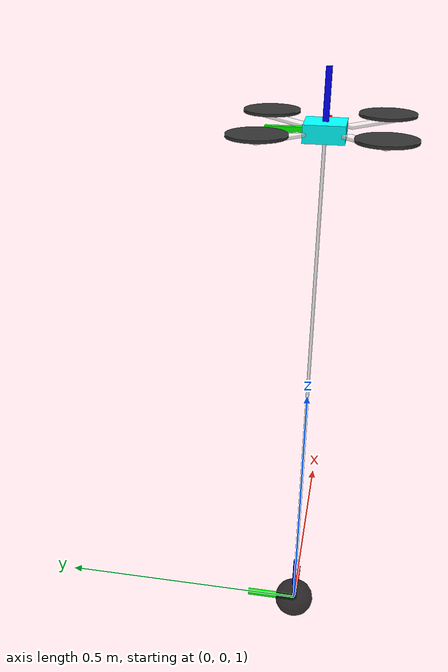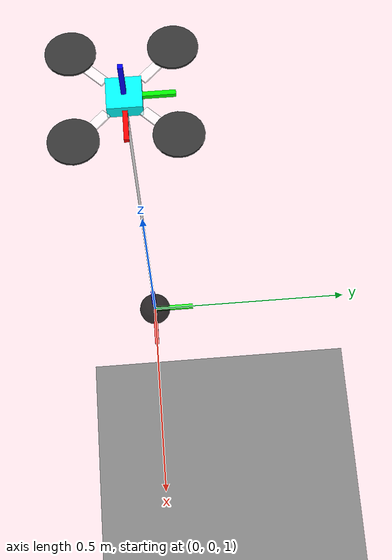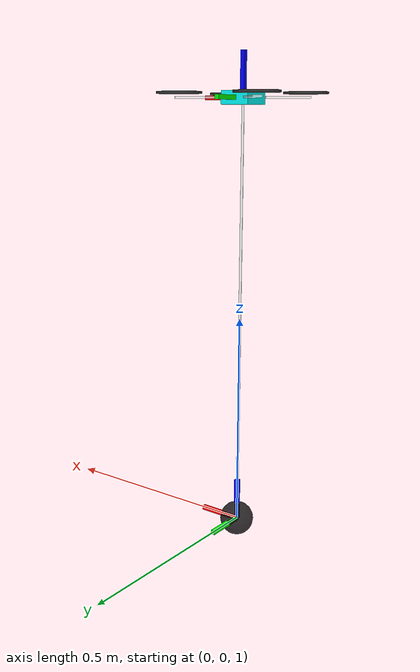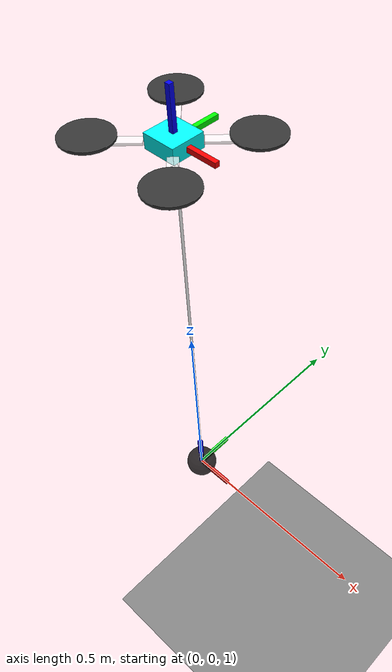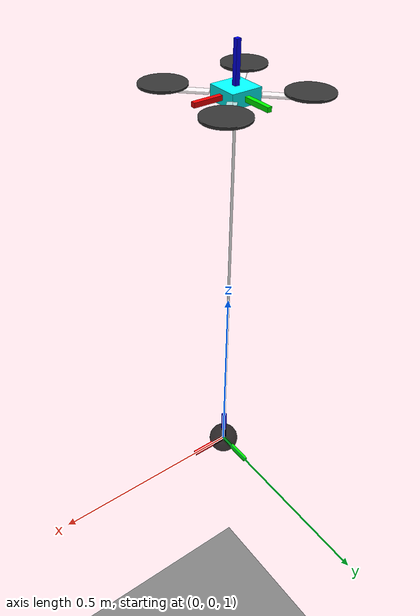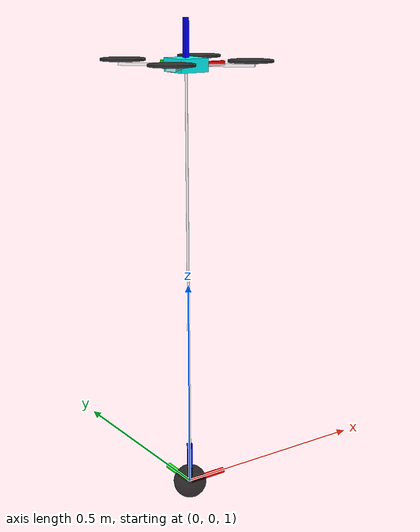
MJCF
<mujoco model="MuJoCo Model">
  <!--Compiler Options-->
  <compiler angle="radian"/>
  <option timestep="0.001" gravity="0 0 -9.81" density="1.225" viscosity="1.8e-05" integrator="RK4" jacobian="sparse">
    <flag energy="enable" contact="enable"/>
  </option>

  <visual>
    <headlight diffuse="0.6 0.6 0.6" ambient="0.3 0.3 0.3" specular="0 0 0"/>
    <rgba haze="0.15 0.25 0.35 1"/>
  </visual>

  <asset>
    <texture type="skybox" builtin="gradient" rgb1="0.3 0.5 0.7" rgb2="0 0 0" width="512" height="3072"/>
    <texture name="floor_texture" type="2d" file="floor3.png"/>
<material name="floor_material" texture="floor_texture" texuniform="true" texrepeat="1 1" reflectance="0.1"/>
  </asset>

  <default>
        <site type="sphere" rgba="1 0 0 1" size="0.005"/>
        <tendon limited="true" width="0.003" rgba="1 1 1 1"/>
        <geom friction=".2"/>
  </default>

  <worldbody>
    <geom type="plane" size="10 10 0.1" />
    <light pos="0 0 10" />

    <camera name="Upper_view" pos="0.0 0.0 6.0" quat="1 0.0 0.0 0.0" mode="trackcom"/>
    <camera name="Track_view" pos="0 -1 .5" quat="0.707 0.70 0.0 0.0" mode="trackcom"/>

    <!-- System Models -->
    <!-- Quadrotor body -->
    <body name="drone" pos="0 0 2" euler="0 0 0">
      <joint name="drone" type="free" damping="0.005" armature="0" pos="0 0 0"/>
      <!--Friction only for the core of the quadrotor-->
      <geom name="core" type="box" pos="0 0 0" quat="1. 0. 0. 0" size="0.035 0.035 0.015" rgba="1 1 1 0.7" mass=".84" friction="1.0 0.005 0.0001"/>
      <geom name="a00" type="box" pos=".071 0.071 0.0" size="0.05 0.01 0.0025" quat=".924 0.0 0.0 0.383" rgba="1 1 1 0.7" mass=".025"/>
      <geom name="a10" type="box" pos=".071 -0.071 0.0" size="0.05 0.01 0.0025" quat=".383 0.0 0.0 0.924" rgba="1 1 1 0.7" mass=".025"/>
      <geom name="a20" type="box" pos="-0.071 -0.071 0.0" size="0.05 0.01 0.0025" quat="-.383 0.0 0.0 0.924" rgba="1 1 1 0.7" mass=".025"/>
      <geom name="a30" type="box" pos="-.071 0.071 0.0" size="0.05 0.01 0.0025" quat=".924 0.0 0.0 -0.383" rgba="1 1 1 0.7" mass=".025"/>

      <!--   Thruster geometries for collisions since site's are excluded from collision checking   -->
      <geom name="thruster0" type="cylinder" pos=" 0.1 0.1 0.01" size="0.05 0.0025" quat="1.0 0.0 0.0 0." rgba="0.2 0.2 0.2 1" mass=".015"/>
      <geom name="thruster1" type="cylinder" pos=" 0.1 -0.1 0.01" size="0.05 0.0025" quat="1.0 0.0 0.0 0." rgba="0.2 0.2 0.2 1" mass=".015"/>
      <geom name="thruster2" type="cylinder" pos="-0.1 -0.1 0.01" size="0.05 0.0025" quat="1.0 0.0 0.0 0." rgba="0.2 0.2 0.2 1" mass=".015"/>
      <geom name="thruster3" type="cylinder" pos="-0.1 0.1 0.01" size="0.05 0.0025" quat="1.0 0.0 0.0 0." rgba="0.2 0.2 0.2 1" mass=".015"/>

      <!--  Representation of the body frame   -->
      <site name="qcX" type="box" pos="0.05 0.0 0.0" size="0.05 0.005 0.005" quat=" 1.0 0.0 0.0 0." rgba="1 0 0 1"/>
      <site name="qcY" type="box" pos="0.0 0.05 0.0" size="0.05 0.005 0.005" quat=" 0.707 0.0 0.0 0.707" rgba="0 1 0 1"/>
      <site name="qcZ" type="box" pos="0.0 0.0 0.05" size="0.05 0.005 0.005" quat="-0.707 0.0 0.707 0." rgba="0 0 1 1"/>

      <!--   Actuator sites to attach actuators, make it invisible   -->
      <site name="thrust" type="box" pos="0 0 0" size="0.035 0.035 0.015" quat="1.0 0.0 0.0 0." rgba="0 1 1 1"/>
      <site name="rateX" type="box" pos="0 0 0" quat="1. 0. 0. 0." size="0.035 0.035 0.015" rgba="0 1 1 1"/>
      <site name="rateY" type="box" pos="0 0 0" quat="1. 0. 0. 0." size="0.035 0.035 0.015" rgba="0 1 1 1"/>
      <site name="rateZ" type="box" pos="0 0 0" quat="1. 0. 0. 0." size="0.035 0.035 0.015" rgba="0 1 1 1"/>
      <site name="imu" pos="0 0 0"/>

      <site name="payload_point_drone" pos="0.0 0.0 -0.00"/>

      <!-- Add bottom-facing camera here -->
    </body>

    <!-- Payloy only in xyz axis -->
    <body name="payload_ball" pos="0 0 1">
      <joint name="payload_ball" pos="0 0 0" type="free" damping="0.01"/>
      <geom name="payload_ball" size="0.04" type="sphere" rgba="0 0 0 0.8" mass="0.15" friction="1.0 0.005 0.0001"/>
      <site name="payload_point" pos="0.0 0.0 0.04"/>
      <!--  Representation of the body frame   -->
      <site name="load_X" type="box" pos="0.05 0.0 0.0" size="0.05 0.005 0.005" quat=" 1.0 0.0 0.0 0." rgba="1 0 0 1"/>
      <site name="load_Y" type="box" pos="0.0 0.05 0.0" size="0.05 0.005 0.005" quat=" 0.707 0.0 0.0 0.707" rgba="0 1 0 1"/>
      <site name="load_Z" type="box" pos="0.0 0.0 0.05" size="0.05 0.005 0.005" quat="-0.707 0.0 0.707 0." rgba="0 0 1 1"/>
    </body>

  </worldbody>

      <!--  Actuators of the system   -->
<actuator>
    <motor ctrllimited="true" ctrlrange="0 20.0" gear="0 0. 1. 0. 0. 0." site="thrust" name="body_thrust"/>
    <motor ctrllimited="true" ctrlrange="-0.5 0.5" gear="0. 0. 0. 1. 0. 0." site="rateX" name="x_moment"/>
    <motor ctrllimited="true" ctrlrange="-0.5 0.5" gear="0. 0. 0. 0. 1. 0." site="rateY" name="y_moment"/>
    <motor ctrllimited="true" ctrlrange="-0.5 0.5" gear="0. 0. 0. 0. 0. 1." site="rateZ" name="z_moment"/>
</actuator>

<tendon>
        <spatial name="rope1" limited="true" range="0 2">
            <site site="payload_point_drone"/>
            <site site="payload_point"/>
        </spatial>
</tendon>

<sensor>
    <framequat name="drone_quat" objtype="site" objname="imu" noise="0.00"/>
    <gyro name="drone_angular_velocity" site="imu" noise="0.001"/>
    <accelerometer name="drone_linacc" site="imu" noise="0.001"/>
    <framepos name="drone_position" objtype="site" objname="imu" noise="0.00"/>
    <velocimeter name="drone_linear_velocity" site="imu" noise="0.00"/>
    <tendonlimitfrc tendon="rope1" />
</sensor>

</mujoco>
